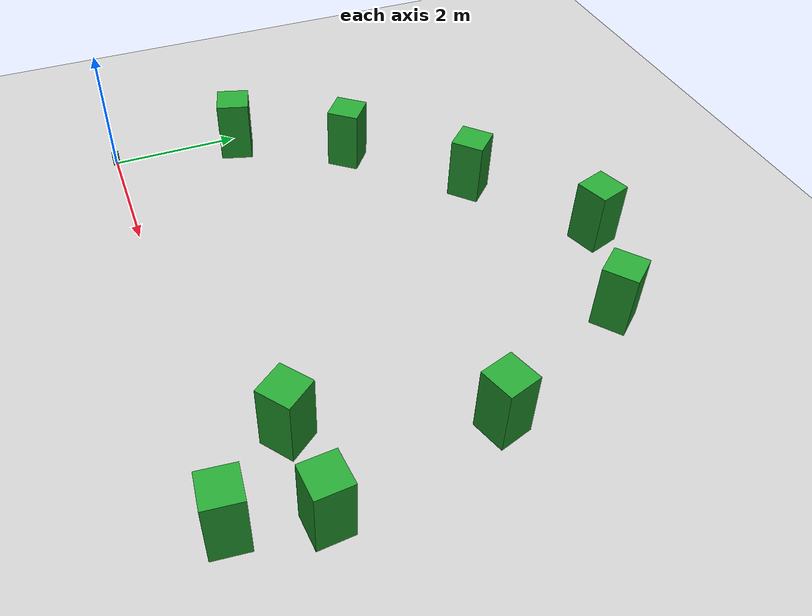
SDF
<?xml version="1.0"?>
<sdf version="1.4">
  <world name="default">

    <include>
      <uri>model://sun</uri>
    </include>
    <include>
      <uri>model://ground_plane</uri>
    </include>
    <!-- CUSTOM Ground Plane -->
    <model name="custom_ground_plane_box">
        <pose>0 0 0.1 0 0.0 1.45</pose>
      <link name="sp_link">
        <inertial>
          <pose>0 0 0 0 0 0</pose>
          <mass>10</mass>
          <inertia>
            <ixx>3.33341666667e+3</ixx>
            <ixy>0.0</ixy>
            <ixz>0.0</ixz>
            <iyy>3.33341666667e+3</iyy>
            <iyz>0.0</iyz>
            <izz>6.66666666667e+3</izz>
          </inertia>
        </inertial>
        <collision name="collision">
          <geometry>
            <box>
              <size>0.1 0.1 0.2</size>
            </box>
          </geometry>
          <surface>
              <friction>
                <ode>
                  <mu>0.5</mu>
                  <mu2>0.5</mu2>
                </ode>
              </friction>
            </surface>
        </collision>

        <visual name="visual">
          <geometry>
            <box>
              <size>0.1 0.1 0.2</size>
            </box>
          </geometry>
          <material>
              <script>
                <uri>file://media/materials/scripts/gazebo.material</uri>
                <name>Gazebo/Green</name>
              </script>
            </material>
        </visual>
        <gravity>0</gravity>
      </link>
      <plugin name="car_steer_plugin" filename="libcar_steer_plugin.so"/>
      <sensor name="imu_sensor" type="imu">
        <always_on>true</always_on>
        <update_rate>200</update_rate>
        <visualize>false</visualize>
        <topic>/imu/data</topic>
        <plugin filename="libgazebo_ros_imu_sensor.so" name="imu_plugin">
          <topicName>/imu/data</topicName>
          <bodyName>sp_link</bodyName>
          <updateRateHZ>200</updateRateHZ>
          <gaussianNoise>0.0</gaussianNoise>
          <xyzOffset>0 0 0</xyzOffset>
          <rpyOffset>0 0 0</rpyOffset>
          <frameName>sp_link</frameName>
          <initialOrientationAsReference>true</initialOrientationAsReference>
        </plugin>
        <pose>0 0 0 0 0 0</pose>
      </sensor>
    </model>

  <model name="box1">
      <pose>0.326587 2.00099 0.5 0 0 1.29183</pose>
      <link name="link">
        <inertial>
          <pose>0 0 0 0 0 0</pose>
          <mass>10</mass>
          <inertia>
            <ixx>3.33341666667e+3</ixx>
            <ixy>3.33341666667e+3</ixy>
            <ixz>0.0</ixz>
            <iyy>3.33341666667e+3</iyy>
            <iyz>0.0</iyz>
            <izz>6.66666666667e+3</izz>
          </inertia>
        </inertial>
        <collision name="collision">
          <geometry>
            <box>
              <size>0.5 0.5 1.0</size>
            </box>
          </geometry>
          <surface>
              <contact>
                <collide_without_contact>true</collide_without_contact>
              </contact>
            </surface>
        </collision>

        <visual name="visual">
          <geometry>
            <box>
              <size>0.5 0.5 1.0</size>
            </box>
          </geometry>
          <material>
              <script>
                <uri>file://media/materials/scripts/gazebo.material</uri>
                <name>Gazebo/Green</name>
              </script>
            </material>
        </visual>
        <gravity>0</gravity>
      </link>
    </model>

    <model name="box2">
        <pose>1.22437 3.67339 0.5 0 0 0.888099</pose>
      <link name="link">
        <inertial>
          <pose>0 0 0 0 0 0</pose>
          <mass>10</mass>
          <inertia>
            <ixx>3.33341666667e+3</ixx>
            <ixy>3.33341666667e+3</ixy>
            <ixz>0.0</ixz>
            <iyy>3.33341666667e+3</iyy>
            <iyz>0.0</iyz>
            <izz>6.66666666667e+3</izz>
          </inertia>
        </inertial>
        <collision name="collision">
          <geometry>
            <box>
              <size>0.5 0.5 1.0</size>
            </box>
          </geometry>
          <surface>
              <contact>
              <collide_without_contact>true</collide_without_contact>
            </contact>
            </surface>
        </collision>

        <visual name="visual">
          <geometry>
            <box>
              <size>0.5 0.5 1.0</size>
            </box>
          </geometry>
          <material>
              <script>
                <uri>file://media/materials/scripts/gazebo.material</uri>
                <name>Gazebo/Green</name>
              </script>
            </material>
        </visual>
        <gravity>0</gravity>
      </link>
    </model>

    <model name="box3">
        <pose>2.70626 5.19637 0.5 0 0 0.757121</pose>
      <link name="link">
        <inertial>
          <pose>0 0 0 0 0 0</pose>
          <mass>10</mass>
          <inertia>
            <ixx>3.33341666667e+3</ixx>
            <ixy>3.33341666667e+3</ixy>
            <ixz>0.0</ixz>
            <iyy>3.33341666667e+3</iyy>
            <iyz>0.0</iyz>
            <izz>6.66666666667e+3</izz>
          </inertia>
        </inertial>
        <collision name="collision">
          <geometry>
            <box>
              <size>0.5 0.5 1.0</size>
            </box>
          </geometry>
          <surface>
              <contact>
              <collide_without_contact>true</collide_without_contact>
            </contact>
            </surface>
        </collision>

        <visual name="visual">
          <geometry>
            <box>
              <size>0.5 0.5 1.0</size>
            </box>
          </geometry>
          <material>
              <script>
                <uri>file://media/materials/scripts/gazebo.material</uri>
                <name>Gazebo/Green</name>
              </script>
            </material>
        </visual>
        <gravity>0</gravity>
      </link>
    </model>

    <model name="box4">
        <pose>4.4406 6.43886 0.5 0 0 0.315998</pose>
      <link name="link">
        <inertial>
          <pose>0 0 0 0 0 0</pose>
          <mass>10</mass>
          <inertia>
            <ixx>3.33341666667e+3</ixx>
            <ixy>3.33341666667e+3</ixy>
            <ixz>0.0</ixz>
            <iyy>3.33341666667e+3</iyy>
            <iyz>0.0</iyz>
            <izz>6.66666666667e+3</izz>
          </inertia>
        </inertial>
        <collision name="collision">
          <geometry>
            <box>
              <size>0.5 0.5 1.0</size>
            </box>
          </geometry>
          <surface>
              <contact>
              <collide_without_contact>true</collide_without_contact>
            </contact>
            </surface>
        </collision>

        <visual name="visual">
          <geometry>
            <box>
              <size>0.5 0.5 1.0</size>
            </box>
          </geometry>
          <material>
              <script>
                <uri>file://media/materials/scripts/gazebo.material</uri>
                <name>Gazebo/Green</name>
              </script>
            </material>
        </visual>
        <gravity>0</gravity>
      </link>
    </model>

    <model name="box5">
        <pose>6.00457 5.81569 0.5 0 0 -0.894097</pose>
      <link name="link">
        <inertial>
          <pose>0 0 0 0 0 0</pose>
          <mass>10</mass>
          <inertia>
            <ixx>3.33341666667e+3</ixx>
            <ixy>3.33341666667e+3</ixy>
            <ixz>0.0</ixz>
            <iyy>3.33341666667e+3</iyy>
            <iyz>0.0</iyz>
            <izz>6.66666666667e+3</izz>
          </inertia>
        </inertial>
        <collision name="collision">
          <geometry>
            <box>
              <size>0.5 0.5 1.0</size>
            </box>
          </geometry>
          <surface>
              <contact>
              <collide_without_contact>true</collide_without_contact>
            </contact>
            </surface>
        </collision>

        <visual name="visual">
          <geometry>
            <box>
              <size>0.5 0.5 1.0</size>
            </box>
          </geometry>
          <material>
              <script>
                <uri>file://media/materials/scripts/gazebo.material</uri>
                <name>Gazebo/Green</name>
              </script>
            </material>
        </visual>
        <gravity>0</gravity>
      </link>
    </model>

    <model name="box6">
        <pose>7.12597 3.51653 0.5 0 0 -1.26047</pose>
      <link name="link">
        <inertial>
          <pose>0 0 0 0 0 0</pose>
          <mass>10</mass>
          <inertia>
            <ixx>3.33341666667e+3</ixx>
            <ixy>3.33341666667e+3</ixy>
            <ixz>0.0</ixz>
            <iyy>3.33341666667e+3</iyy>
            <iyz>0.0</iyz>
            <izz>6.66666666667e+3</izz>
          </inertia>
        </inertial>
        <collision name="collision">
          <geometry>
            <box>
              <size>0.5 0.5 1.0</size>
            </box>
          </geometry>
          <surface>
              <contact>
              <collide_without_contact>true</collide_without_contact>
            </contact>
            </surface>
        </collision>

        <visual name="visual">
          <geometry>
            <box>
              <size>0.5 0.5 1.0</size>
            </box>
          </geometry>
          <material>
              <script>
                <uri>file://media/materials/scripts/gazebo.material</uri>
                <name>Gazebo/Green</name>
              </script>
            </material>
        </visual>
        <gravity>0</gravity>
      </link>
    </model>
    <model name="box7">
        <pose>7.64111 1.05673 0.5 0 0 -1.49301</pose>
      <link name="link">
        <inertial>
          <pose>0 0 0 0 0 0</pose>
          <mass>10</mass>
          <inertia>
            <ixx>3.33341666667e+3</ixx>
            <ixy>3.33341666667e+3</ixy>
            <ixz>0.0</ixz>
            <iyy>3.33341666667e+3</iyy>
            <iyz>0.0</iyz>
            <izz>6.66666666667e+3</izz>
          </inertia>
        </inertial>
        <collision name="collision">
          <geometry>
            <box>
              <size>0.5 0.5 1.0</size>
            </box>
          </geometry>
          <surface>
              <contact>
              <collide_without_contact>true</collide_without_contact>
            </contact>
            </surface>
        </collision>

        <visual name="visual">
          <geometry>
            <box>
              <size>0.5 0.5 1.0</size>
            </box>
          </geometry>
          <material>
              <script>
                <uri>file://media/materials/scripts/gazebo.material</uri>
                <name>Gazebo/Green</name>
              </script>
            </material>
        </visual>
        <gravity>0</gravity>
      </link>
    </model>
    <model name="box8">
        <pose>7.38865 -0.0293316 0.5 0 0 3.0413</pose>
      <link name="link">
        <inertial>
          <pose>0 0 0 0 0 0</pose>
          <mass>10</mass>
          <inertia>
            <ixx>3.33341666667e+3</ixx>
            <ixy>3.33341666667e+3</ixy>
            <ixz>0.0</ixz>
            <iyy>3.33341666667e+3</iyy>
            <iyz>0.0</iyz>
            <izz>6.66666666667e+3</izz>
          </inertia>
        </inertial>
        <collision name="collision">
          <geometry>
            <box>
              <size>0.5 0.5 1.0</size>
            </box>
          </geometry>
          <surface>
              <contact>
              <collide_without_contact>true</collide_without_contact>
            </contact>
            </surface>
        </collision>

        <visual name="visual">
          <geometry>
            <box>
              <size>0.5 0.5 1.0</size>
            </box>
          </geometry>
          <material>
              <script>
                <uri>file://media/materials/scripts/gazebo.material</uri>
                <name>Gazebo/Green</name>
              </script>
            </material>
        </visual>
        <gravity>0</gravity>
      </link>

    </model>
    <model name="box9">
        <pose>6.35246 1.00518 0.5 0 0 2.21321</pose>
      <link name="link">
        <inertial>
          <pose>0 0 0 0 0 0</pose>
          <mass>10</mass>
          <inertia>
            <ixx>3.33341666667e+3</ixx>
            <ixy>3.33341666667e+3</ixy>
            <ixz>0.0</ixz>
            <iyy>3.33341666667e+3</iyy>
            <iyz>0.0</iyz>
            <izz>6.66666666667e+3</izz>
          </inertia>
        </inertial>
        <collision name="collision">
          <geometry>
            <box>
              <size>0.5 0.5 1.0</size>
            </box>
          </geometry>
          <surface>
              <contact>
              <collide_without_contact>true</collide_without_contact>
            </contact>
            </surface>
        </collision>

        <visual name="visual">
          <geometry>
            <box>
              <size>0.5 0.5 1.0</size>
            </box>
          </geometry>
          <material>
              <script>
                <uri>file://media/materials/scripts/gazebo.material</uri>
                <name>Gazebo/Green</name>
              </script>
            </material>
        </visual>
        <gravity>0</gravity>
      </link>
    </model>

  </world>
</sdf>
